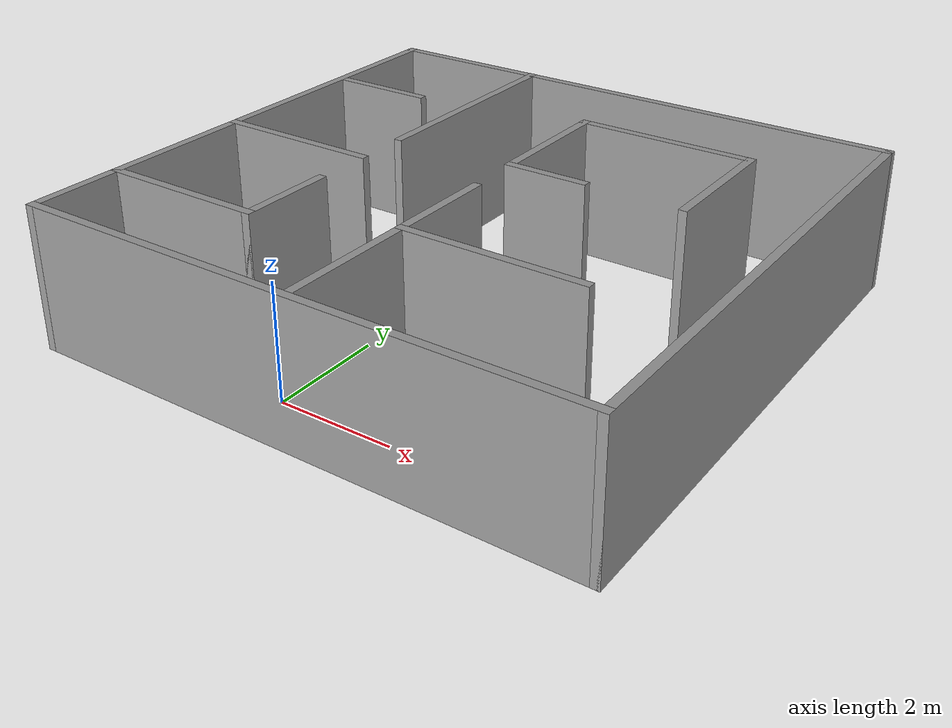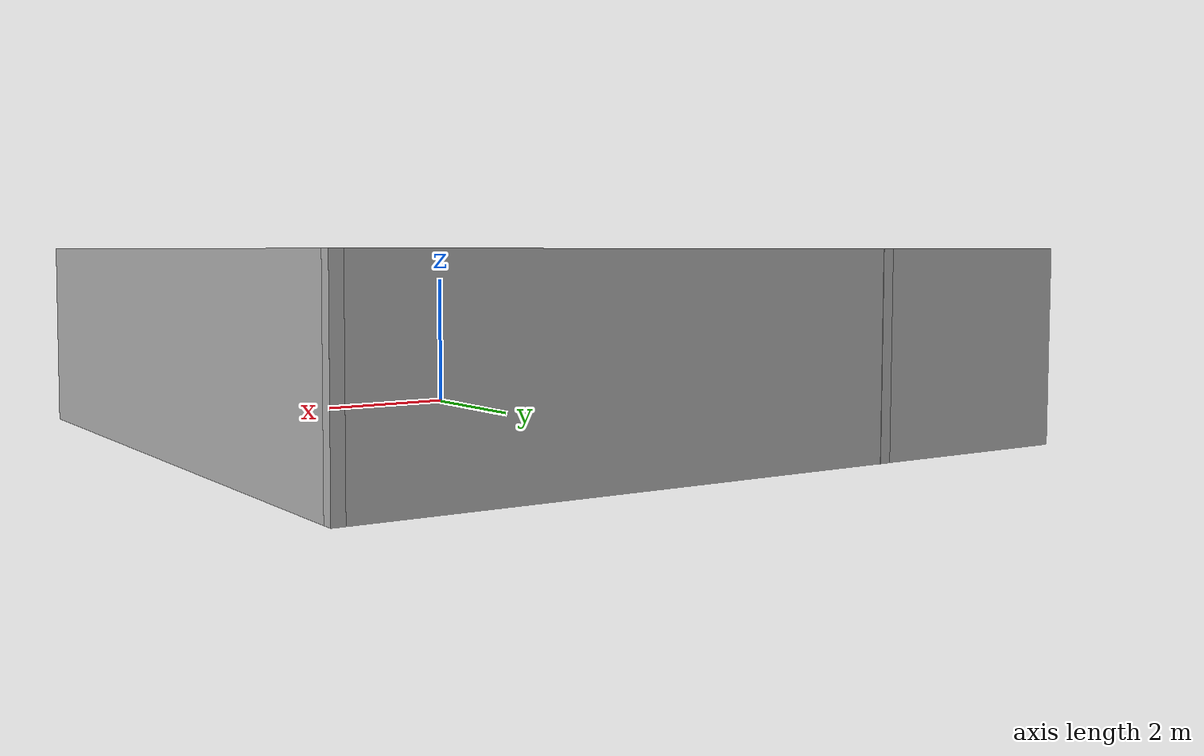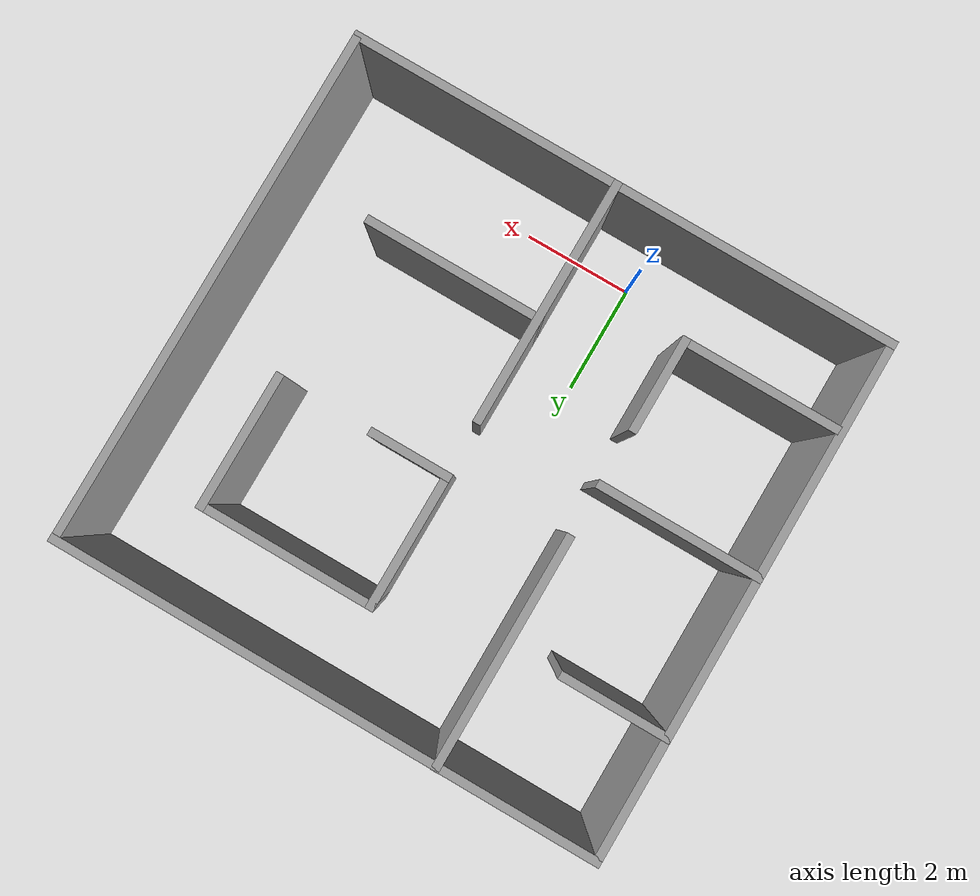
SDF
<?xml version='1.0'?>
<sdf version='1.7'>
  <model name='maze'>
    <pose>0.91729 3.82141 0 0 -0 0</pose>
    <link name='Wall_26'>
      <collision name='Wall_26_Collision'>
        <geometry>
          <box>
            <size>10 0.15 2.5</size>
          </box>
        </geometry>
        <pose>0 0 1.25 0 -0 0</pose>
      </collision>
      <visual name='Wall_26_Visual'>
        <pose>0 0 1.25 0 -0 0</pose>
        <geometry>
          <box>
            <size>10 0.15 2.5</size>
          </box>
        </geometry>
        <material>
          <script>
            <uri>file://media/materials/scripts/gazebo.material</uri>
            <name>Gazebo/Grey</name>
          </script>
          <ambient>1 1 1 1</ambient>
        </material>
        <meta>
          <layer>0</layer>
        </meta>
      </visual>
      <pose>0 -4.67846 0 0 -0 0</pose>
    </link>
    <link name='Wall_27'>
      <collision name='Wall_27_Collision'>
        <geometry>
          <box>
            <size>9.5 0.15 2.5</size>
          </box>
        </geometry>
        <pose>0 0 1.25 0 -0 0</pose>
      </collision>
      <visual name='Wall_27_Visual'>
        <pose>0 0 1.25 0 -0 0</pose>
        <geometry>
          <box>
            <size>9.5 0.15 2.5</size>
          </box>
        </geometry>
        <material>
          <script>
            <uri>file://media/materials/scripts/gazebo.material</uri>
            <name>Gazebo/Grey</name>
          </script>
          <ambient>1 1 1 1</ambient>
        </material>
        <meta>
          <layer>0</layer>
        </meta>
      </visual>
      <pose>4.925 -0.003461 0 0 -0 1.5708</pose>
    </link>
    <link name='Wall_28'>
      <collision name='Wall_28_Collision'>
        <geometry>
          <box>
            <size>10 0.15 2.5</size>
          </box>
        </geometry>
        <pose>0 0 1.25 0 -0 0</pose>
      </collision>
      <visual name='Wall_28_Visual'>
        <pose>0 0 1.25 0 -0 0</pose>
        <geometry>
          <box>
            <size>10 0.15 2.5</size>
          </box>
        </geometry>
        <material>
          <script>
            <uri>file://media/materials/scripts/gazebo.material</uri>
            <name>Gazebo/Grey</name>
          </script>
          <ambient>1 1 1 1</ambient>
        </material>
        <meta>
          <layer>0</layer>
        </meta>
      </visual>
      <pose>0 4.67154 0 0 -0 3.14159</pose>
    </link>
    <link name='Wall_29'>
      <collision name='Wall_29_Collision'>
        <geometry>
          <box>
            <size>9.5 0.15 2.5</size>
          </box>
        </geometry>
        <pose>0 0 1.25 0 -0 0</pose>
      </collision>
      <visual name='Wall_29_Visual'>
        <pose>0 0 1.25 0 -0 0</pose>
        <geometry>
          <box>
            <size>9.5 0.15 2.5</size>
          </box>
        </geometry>
        <material>
          <script>
            <uri>file://media/materials/scripts/gazebo.material</uri>
            <name>Gazebo/Grey</name>
          </script>
          <ambient>1 1 1 1</ambient>
        </material>
        <meta>
          <layer>0</layer>
        </meta>
      </visual>
      <pose>-4.925 -0.003461 0 0 -0 -1.5708</pose>
    </link>
    <link name='Wall_36'>
      <collision name='Wall_36_Collision'>
        <geometry>
          <box>
            <size>3 0.15 2.5</size>
          </box>
        </geometry>
        <pose>0 0 1.25 0 -0 0</pose>
      </collision>
      <visual name='Wall_36_Visual'>
        <pose>0 0 1.25 0 -0 0</pose>
        <geometry>
          <box>
            <size>3 0.15 2.5</size>
          </box>
        </geometry>
        <material>
          <script>
            <uri>file://media/materials/scripts/gazebo.material</uri>
            <name>Gazebo/Grey</name>
          </script>
          <ambient>1 1 1 1</ambient>
        </material>
        <meta>
          <layer>0</layer>
        </meta>
      </visual>
      <pose>-3.49849 -0.40166 0 0 -0 0</pose>
    </link>
    <link name='Wall_38'>
      <collision name='Wall_38_Collision'>
        <geometry>
          <box>
            <size>3 0.15 2.5</size>
          </box>
        </geometry>
        <pose>0 0 1.25 0 -0 0</pose>
      </collision>
      <visual name='Wall_38_Visual'>
        <pose>0 0 1.25 0 -0 0</pose>
        <geometry>
          <box>
            <size>3 0.15 2.5</size>
          </box>
        </geometry>
        <material>
          <script>
            <uri>file://media/materials/scripts/gazebo.material</uri>
            <name>Gazebo/Grey</name>
          </script>
          <ambient>1 1 1 1</ambient>
        </material>
        <meta>
          <layer>0</layer>
        </meta>
      </visual>
      <pose>-3.49609 -3.05214 0 0 -0 0</pose>
    </link>
    <link name='Wall_39'>
      <collision name='Wall_39_Collision'>
        <geometry>
          <box>
            <size>1.75 0.15 2.5</size>
          </box>
        </geometry>
        <pose>0 0 1.25 0 -0 0</pose>
      </collision>
      <visual name='Wall_39_Visual'>
        <pose>0 0 1.25 0 -0 0</pose>
        <geometry>
          <box>
            <size>1.75 0.15 2.5</size>
          </box>
        </geometry>
        <material>
          <script>
            <uri>file://media/materials/scripts/gazebo.material</uri>
            <name>Gazebo/Grey</name>
          </script>
          <ambient>1 1 1 1</ambient>
        </material>
        <meta>
          <layer>0</layer>
        </meta>
      </visual>
      <pose>-2.07109 -2.25214 0 0 -0 1.5708</pose>
    </link>
    <link name='Wall_43'>
      <collision name='Wall_43_Collision'>
        <geometry>
          <box>
            <size>4.25 0.15 2.5</size>
          </box>
        </geometry>
        <pose>0 0 1.25 0 -0 0</pose>
      </collision>
      <visual name='Wall_43_Visual'>
        <pose>0 0 1.25 0 -0 0</pose>
        <geometry>
          <box>
            <size>4.25 0.15 2.5</size>
          </box>
        </geometry>
        <material>
          <script>
            <uri>file://media/materials/scripts/gazebo.material</uri>
            <name>Gazebo/Grey</name>
          </script>
          <ambient>1 1 1 1</ambient>
        </material>
        <meta>
          <layer>0</layer>
        </meta>
      </visual>
      <pose>-2.0495 2.62846 0 0 -0 1.5708</pose>
    </link>
    <link name='Wall_45'>
      <collision name='Wall_45_Collision'>
        <geometry>
          <box>
            <size>2 0.15 2.5</size>
          </box>
        </geometry>
        <pose>0 0 1.25 0 -0 0</pose>
      </collision>
      <visual name='Wall_45_Visual'>
        <pose>0 0 1.25 0 -0 0</pose>
        <geometry>
          <box>
            <size>2 0.15 2.5</size>
          </box>
        </geometry>
        <material>
          <script>
            <uri>file://media/materials/scripts/gazebo.material</uri>
            <name>Gazebo/Grey</name>
          </script>
          <ambient>1 1 1 1</ambient>
        </material>
        <meta>
          <layer>0</layer>
        </meta>
      </visual>
      <pose>-3.98979 2.47772 0 0 -0 0</pose>
    </link>
    <link name='Wall_47'>
      <collision name='Wall_47_Collision'>
        <geometry>
          <box>
            <size>2.5 0.15 2.5</size>
          </box>
        </geometry>
        <pose>0 0 1.25 0 -0 0</pose>
      </collision>
      <visual name='Wall_47_Visual'>
        <pose>0 0 1.25 0 -0 0</pose>
        <geometry>
          <box>
            <size>2.5 0.15 2.5</size>
          </box>
        </geometry>
        <material>
          <script>
            <uri>file://media/materials/scripts/gazebo.material</uri>
            <name>Gazebo/Grey</name>
          </script>
          <ambient>1 1 1 1</ambient>
        </material>
        <meta>
          <layer>0</layer>
        </meta>
      </visual>
      <pose>0.097423 1.87505 0 0 -0 -1.5708</pose>
    </link>
    <link name='Wall_48'>
      <collision name='Wall_48_Collision'>
        <geometry>
          <box>
            <size>1.5 0.15 2.5</size>
          </box>
        </geometry>
        <pose>0 0 1.25 0 -0 0</pose>
      </collision>
      <visual name='Wall_48_Visual'>
        <pose>0 0 1.25 0 -0 0</pose>
        <geometry>
          <box>
            <size>1.5 0.15 2.5</size>
          </box>
        </geometry>
        <material>
          <script>
            <uri>file://media/materials/scripts/gazebo.material</uri>
            <name>Gazebo/Grey</name>
          </script>
          <ambient>1 1 1 1</ambient>
        </material>
        <meta>
          <layer>0</layer>
        </meta>
      </visual>
      <pose>0.772423 0.700048 0 0 -0 0</pose>
    </link>
    <link name='Wall_50'>
      <collision name='Wall_50_Collision'>
        <geometry>
          <box>
            <size>3.25 0.15 2.5</size>
          </box>
        </geometry>
        <pose>0 0 1.25 0 -0 0</pose>
      </collision>
      <visual name='Wall_50_Visual'>
        <pose>0 0 1.25 0 -0 0</pose>
        <geometry>
          <box>
            <size>3.25 0.15 2.5</size>
          </box>
        </geometry>
        <material>
          <script>
            <uri>file://media/materials/scripts/gazebo.material</uri>
            <name>Gazebo/Grey</name>
          </script>
          <ambient>1 1 1 1</ambient>
        </material>
        <meta>
          <layer>0</layer>
        </meta>
      </visual>
      <pose>1.64742 3.05005 0 0 -0 0</pose>
    </link>
    <link name='Wall_51'>
      <collision name='Wall_51_Collision'>
        <geometry>
          <box>
            <size>2.5 0.15 2.5</size>
          </box>
        </geometry>
        <pose>0 0 1.25 0 -0 0</pose>
      </collision>
      <visual name='Wall_51_Visual'>
        <pose>0 0 1.25 0 -0 0</pose>
        <geometry>
          <box>
            <size>2.5 0.15 2.5</size>
          </box>
        </geometry>
        <material>
          <script>
            <uri>file://media/materials/scripts/gazebo.material</uri>
            <name>Gazebo/Grey</name>
          </script>
          <ambient>1 1 1 1</ambient>
        </material>
        <meta>
          <layer>0</layer>
        </meta>
      </visual>
      <pose>3.19742 1.87505 0 0 -0 -1.5708</pose>
    </link>
    <link name='Wall_53'>
      <collision name='Wall_53_Collision'>
        <geometry>
          <box>
            <size>4.5 0.15 2.5</size>
          </box>
        </geometry>
        <pose>0 0 1.25 0 -0 0</pose>
      </collision>
      <visual name='Wall_53_Visual'>
        <pose>0 0 1.25 0 -0 0</pose>
        <geometry>
          <box>
            <size>4.5 0.15 2.5</size>
          </box>
        </geometry>
        <material>
          <script>
            <uri>file://media/materials/scripts/gazebo.material</uri>
            <name>Gazebo/Grey</name>
          </script>
          <ambient>1 1 1 1</ambient>
        </material>
        <meta>
          <layer>0</layer>
        </meta>
      </visual>
      <pose>0.120423 -2.50295 0 0 -0 1.5708</pose>
    </link>
    <link name='Wall_55'>
      <collision name='Wall_55_Collision'>
        <geometry>
          <box>
            <size>3.25 0.15 2.5</size>
          </box>
        </geometry>
        <pose>0 0 1.25 0 -0 0</pose>
      </collision>
      <visual name='Wall_55_Visual'>
        <pose>0 0 1.25 0 -0 0</pose>
        <geometry>
          <box>
            <size>3.25 0.15 2.5</size>
          </box>
        </geometry>
        <material>
          <script>
            <uri>file://media/materials/scripts/gazebo.material</uri>
            <name>Gazebo/Grey</name>
          </script>
          <ambient>1 1 1 1</ambient>
        </material>
        <meta>
          <layer>0</layer>
        </meta>
      </visual>
      <pose>1.67042 -2.19395 0 0 -0 0</pose>
    </link>
    <static>1</static>
  </model>
</sdf>
